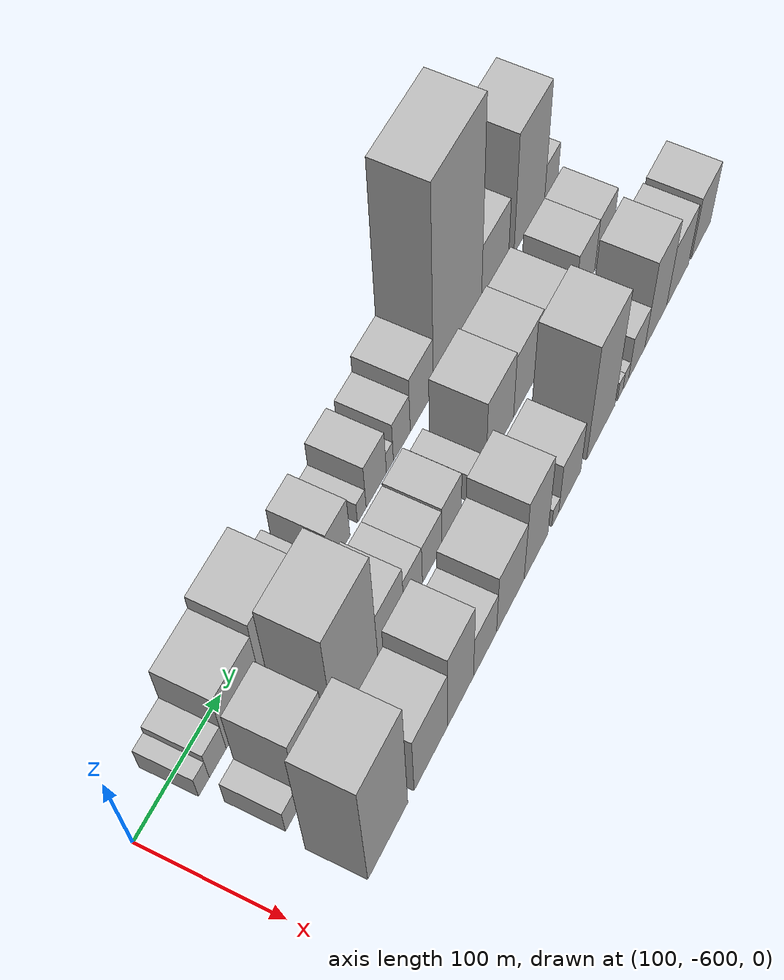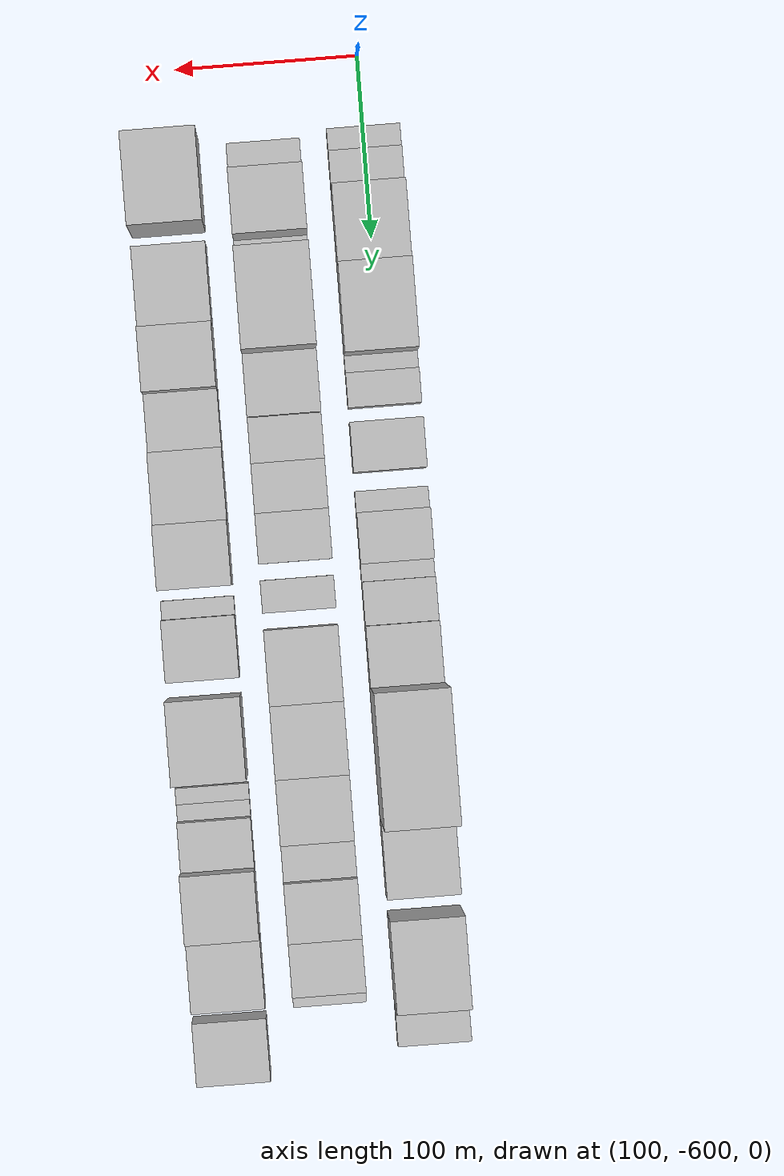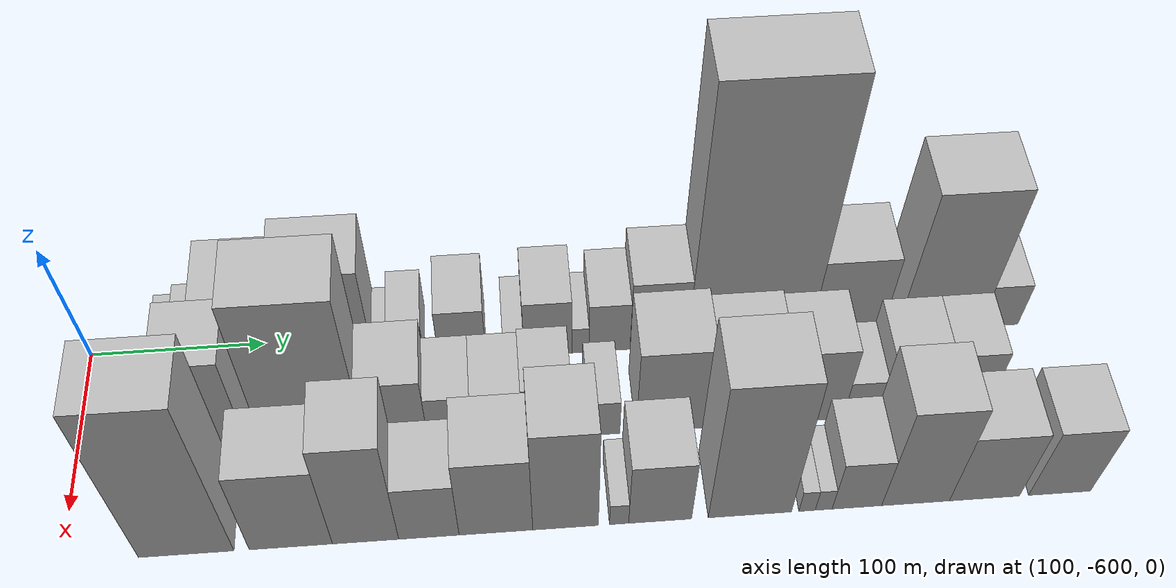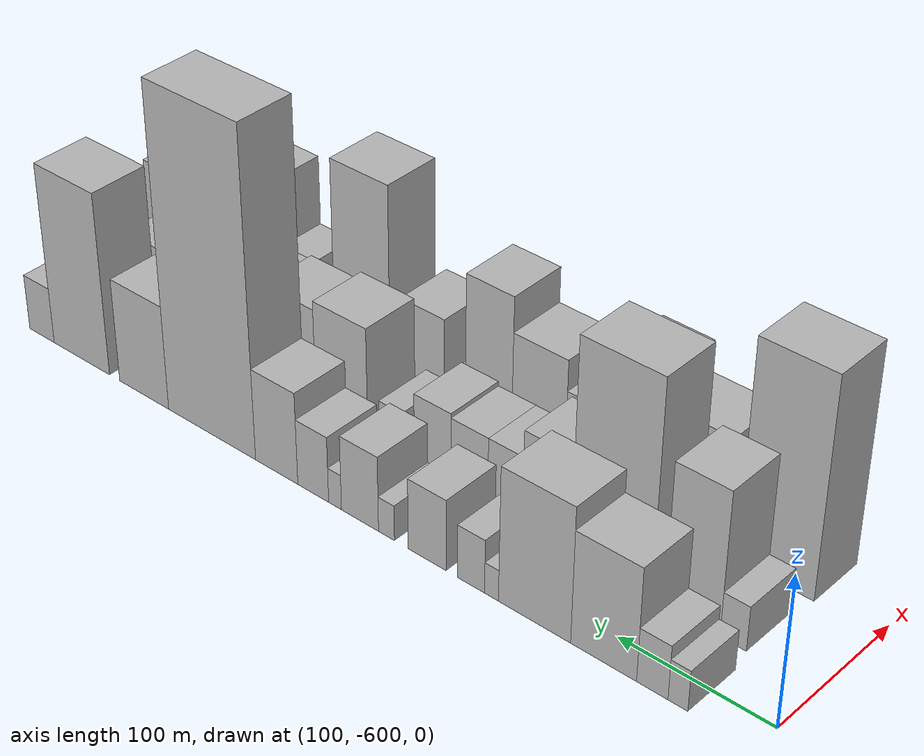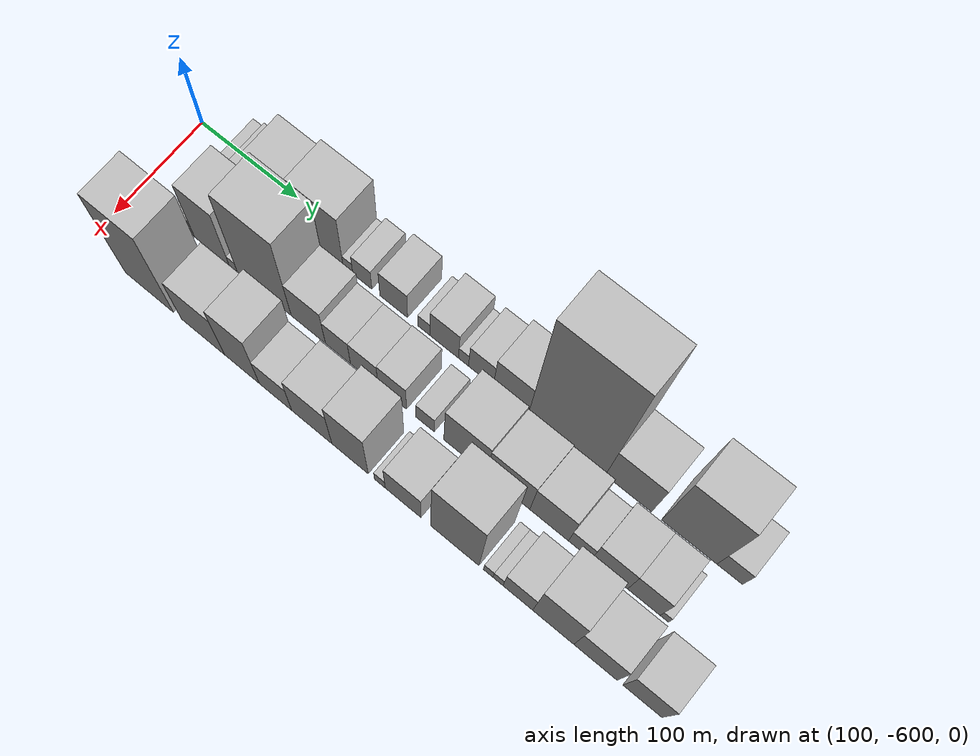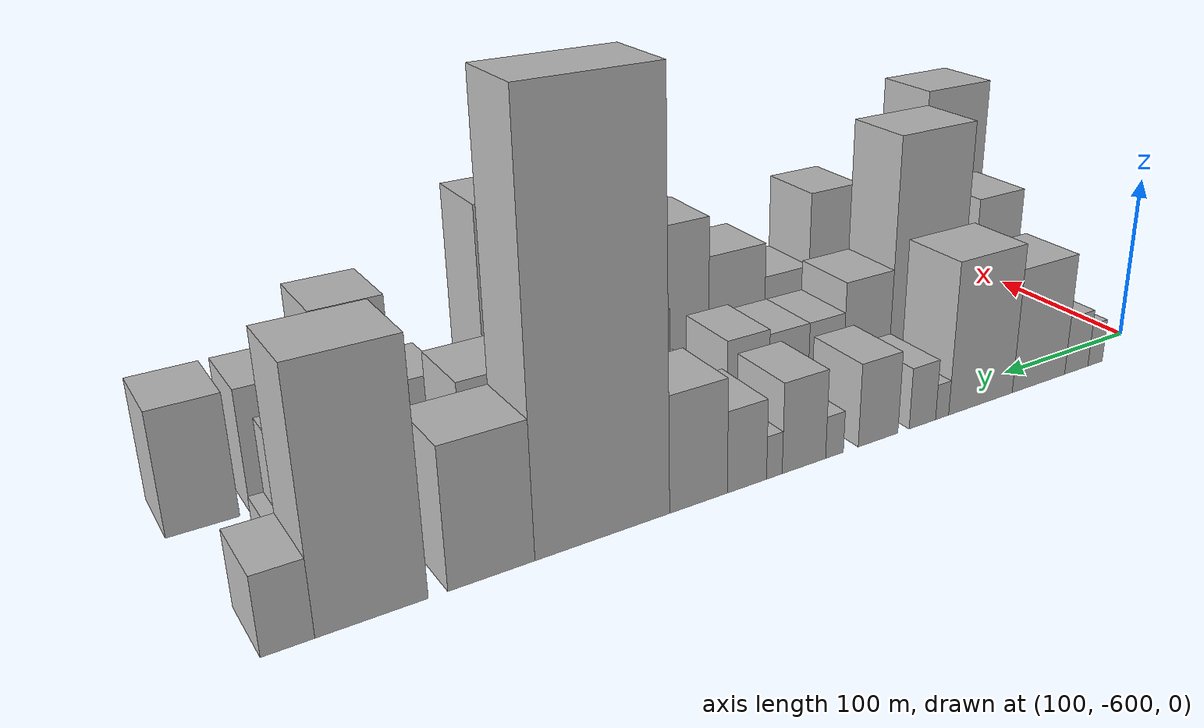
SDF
<sdf version="1.6">
 <world name="default">
  <model name="building_1">
   <static>1</static>
   <pose>100.0000 -553.8017 0 0.000000 0.000000 0.000000</pose>
   <link name="link">
    <pose>0 0 13.50 0 0 0</pose>
    <collision name="collision"><geometry><box><size>40.0000 12.3965 27.0000</size></box></geometry></collision>
    <visual name="visual">
     <cast_shadows>0</cast_shadows>
     <geometry><box><size>40.0000 12.3965 27.0000</size></box></geometry>
     <material>
      <script>
       <uri>model://HANNAS_wall/materials/scripts</uri>
       <uri>model://HANNAS_wall/materials/textures</uri>
       <name>vrc/HANNAS_wall</name>
      </script>
     </material>
    </visual>
   </link>
  </model>
  <model name="building_2">
   <static>1</static>
   <pose>100.0000 -537.7084 0 0.000000 0.000000 0.000000</pose>
   <link name="link">
    <pose>0 0 18.00 0 0 0</pose>
    <collision name="collision"><geometry><box><size>40.0000 19.7902 36.0000</size></box></geometry></collision>
    <visual name="visual">
     <cast_shadows>0</cast_shadows>
     <geometry><box><size>40.0000 19.7902 36.0000</size></box></geometry>
     <material>
      <script>
       <uri>model://HANNAS_wall/materials/scripts</uri>
       <uri>model://HANNAS_wall/materials/textures</uri>
       <name>vrc/HANNAS_wall</name>
      </script>
     </material>
    </visual>
   </link>
  </model>
  <model name="building_3">
   <static>1</static>
   <pose>100.0000 -506.4437 0 0.000000 0.000000 0.000000</pose>
   <link name="link">
    <pose>0 0 37.50 0 0 0</pose>
    <collision name="collision"><geometry><box><size>40.0000 42.7392 75.0000</size></box></geometry></collision>
    <visual name="visual">
     <cast_shadows>0</cast_shadows>
     <geometry><box><size>40.0000 42.7392 75.0000</size></box></geometry>
     <material>
      <script>
       <uri>model://HANNAS_wall/materials/scripts</uri>
       <uri>model://HANNAS_wall/materials/textures</uri>
       <name>vrc/HANNAS_wall</name>
      </script>
     </material>
    </visual>
   </link>
  </model>
  <model name="building_4">
   <static>1</static>
   <pose>100.0000 -460.7238 0 0.000000 0.000000 0.000000</pose>
   <link name="link">
    <pose>0 0 45.00 0 0 0</pose>
    <collision name="collision"><geometry><box><size>40.0000 48.7006 90.0000</size></box></geometry></collision>
    <visual name="visual">
     <cast_shadows>0</cast_shadows>
     <geometry><box><size>40.0000 48.7006 90.0000</size></box></geometry>
     <material>
      <script>
       <uri>model://HANNAS_wall/materials/scripts</uri>
       <uri>model://HANNAS_wall/materials/textures</uri>
       <name>vrc/HANNAS_wall</name>
      </script>
     </material>
    </visual>
   </link>
  </model>
  <model name="building_5">
   <static>1</static>
   <pose>100.0000 -431.5659 0 0.000000 0.000000 0.000000</pose>
   <link name="link">
    <pose>0 0 10.50 0 0 0</pose>
    <collision name="collision"><geometry><box><size>40.0000 9.6152 21.0000</size></box></geometry></collision>
    <visual name="visual">
     <cast_shadows>0</cast_shadows>
     <geometry><box><size>40.0000 9.6152 21.0000</size></box></geometry>
     <material>
      <script>
       <uri>model://HANNAS_wall/materials/scripts</uri>
       <uri>model://HANNAS_wall/materials/textures</uri>
       <name>vrc/HANNAS_wall</name>
      </script>
     </material>
    </visual>
   </link>
  </model>
  <model name="building_6">
   <static>1</static>
   <pose>100.0000 -417.2465 0 0.000000 0.000000 0.000000</pose>
   <link name="link">
    <pose>0 0 18.00 0 0 0</pose>
    <collision name="collision"><geometry><box><size>40.0000 19.0235 36.0000</size></box></geometry></collision>
    <visual name="visual">
     <cast_shadows>0</cast_shadows>
     <geometry><box><size>40.0000 19.0235 36.0000</size></box></geometry>
     <material>
      <script>
       <uri>model://HANNAS_wall/materials/scripts</uri>
       <uri>model://HANNAS_wall/materials/textures</uri>
       <name>vrc/HANNAS_wall</name>
      </script>
     </material>
    </visual>
   </link>
  </model>
  <model name="building_7">
   <static>1</static>
   <pose>100.0000 -386.0777 0 0.000000 0.000000 0.000000</pose>
   <link name="link">
    <pose>0 0 24.00 0 0 0</pose>
    <collision name="collision"><geometry><box><size>40.0000 27.3142 48.0000</size></box></geometry></collision>
    <visual name="visual">
     <cast_shadows>0</cast_shadows>
     <geometry><box><size>40.0000 27.3142 48.0000</size></box></geometry>
     <material>
      <script>
       <uri>model://HANNAS_wall/materials/scripts</uri>
       <uri>model://HANNAS_wall/materials/textures</uri>
       <name>vrc/HANNAS_wall</name>
      </script>
     </material>
    </visual>
   </link>
  </model>
  <model name="building_8">
   <static>1</static>
   <pose>100.0000 -356.5520 0 0.000000 0.000000 0.000000</pose>
   <link name="link">
    <pose>0 0 12.00 0 0 0</pose>
    <collision name="collision"><geometry><box><size>40.0000 11.7372 24.0000</size></box></geometry></collision>
    <visual name="visual">
     <cast_shadows>0</cast_shadows>
     <geometry><box><size>40.0000 11.7372 24.0000</size></box></geometry>
     <material>
      <script>
       <uri>model://HANNAS_wall/materials/scripts</uri>
       <uri>model://HANNAS_wall/materials/textures</uri>
       <name>vrc/HANNAS_wall</name>
      </script>
     </material>
    </visual>
   </link>
  </model>
  <model name="building_9">
   <static>1</static>
   <pose>100.0000 -336.7779 0 0.000000 0.000000 0.000000</pose>
   <link name="link">
    <pose>0 0 25.50 0 0 0</pose>
    <collision name="collision"><geometry><box><size>40.0000 27.8112 51.0000</size></box></geometry></collision>
    <visual name="visual">
     <cast_shadows>0</cast_shadows>
     <geometry><box><size>40.0000 27.8112 51.0000</size></box></geometry>
     <material>
      <script>
       <uri>model://HANNAS_wall/materials/scripts</uri>
       <uri>model://HANNAS_wall/materials/textures</uri>
       <name>vrc/HANNAS_wall</name>
      </script>
     </material>
    </visual>
   </link>
  </model>
  <model name="building_10">
   <static>1</static>
   <pose>100.0000 -317.9994 0 0.000000 0.000000 0.000000</pose>
   <link name="link">
    <pose>0 0 12.00 0 0 0</pose>
    <collision name="collision"><geometry><box><size>40.0000 9.7457 24.0000</size></box></geometry></collision>
    <visual name="visual">
     <cast_shadows>0</cast_shadows>
     <geometry><box><size>40.0000 9.7457 24.0000</size></box></geometry>
     <material>
      <script>
       <uri>model://HANNAS_wall/materials/scripts</uri>
       <uri>model://HANNAS_wall/materials/textures</uri>
       <name>vrc/HANNAS_wall</name>
      </script>
     </material>
    </visual>
   </link>
  </model>
  <model name="building_11">
   <static>1</static>
   <pose>100.0000 -301.2262 0 0.000000 0.000000 0.000000</pose>
   <link name="link">
    <pose>0 0 22.50 0 0 0</pose>
    <collision name="collision"><geometry><box><size>40.0000 23.8006 45.0000</size></box></geometry></collision>
    <visual name="visual">
     <cast_shadows>0</cast_shadows>
     <geometry><box><size>40.0000 23.8006 45.0000</size></box></geometry>
     <material>
      <script>
       <uri>model://HANNAS_wall/materials/scripts</uri>
       <uri>model://HANNAS_wall/materials/textures</uri>
       <name>vrc/HANNAS_wall</name>
      </script>
     </material>
    </visual>
   </link>
  </model>
  <model name="building_12">
   <static>1</static>
   <pose>100.0000 -272.6169 0 0.000000 0.000000 0.000000</pose>
   <link name="link">
    <pose>0 0 31.50 0 0 0</pose>
    <collision name="collision"><geometry><box><size>40.0000 33.4180 63.0000</size></box></geometry></collision>
    <visual name="visual">
     <cast_shadows>0</cast_shadows>
     <geometry><box><size>40.0000 33.4180 63.0000</size></box></geometry>
     <material>
      <script>
       <uri>model://HANNAS_wall/materials/scripts</uri>
       <uri>model://HANNAS_wall/materials/textures</uri>
       <name>vrc/HANNAS_wall</name>
      </script>
     </material>
    </visual>
   </link>
  </model>
  <model name="building_13">
   <static>1</static>
   <pose>100.0000 -220.0636 0 0.000000 0.000000 0.000000</pose>
   <link name="link">
    <pose>0 0 109.50 0 0 0</pose>
    <collision name="collision"><geometry><box><size>40.0000 71.6887 219.0000</size></box></geometry></collision>
    <visual name="visual">
     <cast_shadows>0</cast_shadows>
     <geometry><box><size>40.0000 71.6887 219.0000</size></box></geometry>
     <material>
      <script>
       <uri>model://HANNAS_wall/materials/scripts</uri>
       <uri>model://HANNAS_wall/materials/textures</uri>
       <name>vrc/HANNAS_wall</name>
      </script>
     </material>
    </visual>
   </link>
  </model>
  <model name="building_14">
   <static>1</static>
   <pose>100.0000 -163.1193 0 0.000000 0.000000 0.000000</pose>
   <link name="link">
    <pose>0 0 36.00 0 0 0</pose>
    <collision name="collision"><geometry><box><size>40.0000 42.1997 72.0000</size></box></geometry></collision>
    <visual name="visual">
     <cast_shadows>0</cast_shadows>
     <geometry><box><size>40.0000 42.1997 72.0000</size></box></geometry>
     <material>
      <script>
       <uri>model://HANNAS_wall/materials/scripts</uri>
       <uri>model://HANNAS_wall/materials/textures</uri>
       <name>vrc/HANNAS_wall</name>
      </script>
     </material>
    </visual>
   </link>
  </model>
  <model name="building_15">
   <static>1</static>
   <pose>100.0000 -108.1530 0 0.000000 0.000000 0.000000</pose>
   <link name="link">
    <pose>0 0 63.00 0 0 0</pose>
    <collision name="collision"><geometry><box><size>40.0000 49.7329 126.0000</size></box></geometry></collision>
    <visual name="visual">
     <cast_shadows>0</cast_shadows>
     <geometry><box><size>40.0000 49.7329 126.0000</size></box></geometry>
     <material>
      <script>
       <uri>model://HANNAS_wall/materials/scripts</uri>
       <uri>model://HANNAS_wall/materials/textures</uri>
       <name>vrc/HANNAS_wall</name>
      </script>
     </material>
    </visual>
   </link>
  </model>
  <model name="building_16">
   <static>1</static>
   <pose>100.0000 -72.0409 0 0.000000 0.000000 0.000000</pose>
   <link name="link">
    <pose>0 0 19.50 0 0 0</pose>
    <collision name="collision"><geometry><box><size>40.0000 22.4915 39.0000</size></box></geometry></collision>
    <visual name="visual">
     <cast_shadows>0</cast_shadows>
     <geometry><box><size>40.0000 22.4915 39.0000</size></box></geometry>
     <material>
      <script>
       <uri>model://HANNAS_wall/materials/scripts</uri>
       <uri>model://HANNAS_wall/materials/textures</uri>
       <name>vrc/HANNAS_wall</name>
      </script>
     </material>
    </visual>
   </link>
  </model>
  <model name="building_35">
   <static>1</static>
   <pose>155.0000 -547.6633 0 0.000000 0.000000 0.000000</pose>
   <link name="link">
    <pose>0 0 15.00 0 0 0</pose>
    <collision name="collision"><geometry><box><size>40.0000 16.6734 30.0000</size></box></geometry></collision>
    <visual name="visual">
     <cast_shadows>0</cast_shadows>
     <geometry><box><size>40.0000 16.6734 30.0000</size></box></geometry>
     <material>
      <script>
       <uri>model://HANNAS_wall/materials/scripts</uri>
       <uri>model://HANNAS_wall/materials/textures</uri>
       <name>vrc/HANNAS_wall</name>
      </script>
     </material>
    </visual>
   </link>
  </model>
  <model name="building_36">
   <static>1</static>
   <pose>155.0000 -521.5033 0 0.000000 0.000000 0.000000</pose>
   <link name="link">
    <pose>0 0 48.00 0 0 0</pose>
    <collision name="collision"><geometry><box><size>40.0000 35.6466 96.0000</size></box></geometry></collision>
    <visual name="visual">
     <cast_shadows>0</cast_shadows>
     <geometry><box><size>40.0000 35.6466 96.0000</size></box></geometry>
     <material>
      <script>
       <uri>model://HANNAS_wall/materials/scripts</uri>
       <uri>model://HANNAS_wall/materials/textures</uri>
       <name>vrc/HANNAS_wall</name>
      </script>
     </material>
    </visual>
   </link>
  </model>
  <model name="building_37">
   <static>1</static>
   <pose>155.0000 -499.4806 0 0.000000 0.000000 0.000000</pose>
   <link name="link">
    <pose>0 0 9.00 0 0 0</pose>
    <collision name="collision"><geometry><box><size>40.0000 8.3988 18.0000</size></box></geometry></collision>
    <visual name="visual">
     <cast_shadows>0</cast_shadows>
     <geometry><box><size>40.0000 8.3988 18.0000</size></box></geometry>
     <material>
      <script>
       <uri>model://HANNAS_wall/materials/scripts</uri>
       <uri>model://HANNAS_wall/materials/textures</uri>
       <name>vrc/HANNAS_wall</name>
      </script>
     </material>
    </visual>
   </link>
  </model>
  <model name="building_38">
   <static>1</static>
   <pose>155.0000 -467.8850 0 0.000000 0.000000 0.000000</pose>
   <link name="link">
    <pose>0 0 72.00 0 0 0</pose>
    <collision name="collision"><geometry><box><size>40.0000 54.7925 144.0000</size></box></geometry></collision>
    <visual name="visual">
     <cast_shadows>0</cast_shadows>
     <geometry><box><size>40.0000 54.7925 144.0000</size></box></geometry>
     <material>
      <script>
       <uri>model://HANNAS_wall/materials/scripts</uri>
       <uri>model://HANNAS_wall/materials/textures</uri>
       <name>vrc/HANNAS_wall</name>
      </script>
     </material>
    </visual>
   </link>
  </model>
  <model name="building_39">
   <static>1</static>
   <pose>155.0000 -423.4270 0 0.000000 0.000000 0.000000</pose>
   <link name="link">
    <pose>0 0 33.00 0 0 0</pose>
    <collision name="collision"><geometry><box><size>40.0000 34.1236 66.0000</size></box></geometry></collision>
    <visual name="visual">
     <cast_shadows>0</cast_shadows>
     <geometry><box><size>40.0000 34.1236 66.0000</size></box></geometry>
     <material>
      <script>
       <uri>model://HANNAS_wall/materials/scripts</uri>
       <uri>model://HANNAS_wall/materials/textures</uri>
       <name>vrc/HANNAS_wall</name>
      </script>
     </material>
    </visual>
   </link>
  </model>
  <model name="building_40">
   <static>1</static>
   <pose>155.0000 -393.9571 0 0.000000 0.000000 0.000000</pose>
   <link name="link">
    <pose>0 0 24.00 0 0 0</pose>
    <collision name="collision"><geometry><box><size>40.0000 24.8163 48.0000</size></box></geometry></collision>
    <visual name="visual">
     <cast_shadows>0</cast_shadows>
     <geometry><box><size>40.0000 24.8163 48.0000</size></box></geometry>
     <material>
      <script>
       <uri>model://HANNAS_wall/materials/scripts</uri>
       <uri>model://HANNAS_wall/materials/textures</uri>
       <name>vrc/HANNAS_wall</name>
      </script>
     </material>
    </visual>
   </link>
  </model>
  <model name="building_41">
   <static>1</static>
   <pose>155.0000 -368.0274 0 0.000000 0.000000 0.000000</pose>
   <link name="link">
    <pose>0 0 24.00 0 0 0</pose>
    <collision name="collision"><geometry><box><size>40.0000 27.0430 48.0000</size></box></geometry></collision>
    <visual name="visual">
     <cast_shadows>0</cast_shadows>
     <geometry><box><size>40.0000 27.0430 48.0000</size></box></geometry>
     <material>
      <script>
       <uri>model://HANNAS_wall/materials/scripts</uri>
       <uri>model://HANNAS_wall/materials/textures</uri>
       <name>vrc/HANNAS_wall</name>
      </script>
     </material>
    </visual>
   </link>
  </model>
  <model name="building_42">
   <static>1</static>
   <pose>155.0000 -340.8115 0 0.000000 0.000000 0.000000</pose>
   <link name="link">
    <pose>0 0 25.50 0 0 0</pose>
    <collision name="collision"><geometry><box><size>40.0000 27.3888 51.0000</size></box></geometry></collision>
    <visual name="visual">
     <cast_shadows>0</cast_shadows>
     <geometry><box><size>40.0000 27.3888 51.0000</size></box></geometry>
     <material>
      <script>
       <uri>model://HANNAS_wall/materials/scripts</uri>
       <uri>model://HANNAS_wall/materials/textures</uri>
       <name>vrc/HANNAS_wall</name>
      </script>
     </material>
    </visual>
   </link>
  </model>
  <model name="building_43">
   <static>1</static>
   <pose>155.0000 -309.2607 0 0.000000 0.000000 0.000000</pose>
   <link name="link">
    <pose>0 0 16.50 0 0 0</pose>
    <collision name="collision"><geometry><box><size>40.0000 17.7128 33.0000</size></box></geometry></collision>
    <visual name="visual">
     <cast_shadows>0</cast_shadows>
     <geometry><box><size>40.0000 17.7128 33.0000</size></box></geometry>
     <material>
      <script>
       <uri>model://HANNAS_wall/materials/scripts</uri>
       <uri>model://HANNAS_wall/materials/textures</uri>
       <name>vrc/HANNAS_wall</name>
      </script>
     </material>
    </visual>
   </link>
  </model>
  <model name="building_44">
   <static>1</static>
   <pose>155.0000 -270.9186 0 0.000000 0.000000 0.000000</pose>
   <link name="link">
    <pose>0 0 39.00 0 0 0</pose>
    <collision name="collision"><geometry><box><size>40.0000 40.9714 78.0000</size></box></geometry></collision>
    <visual name="visual">
     <cast_shadows>0</cast_shadows>
     <geometry><box><size>40.0000 40.9714 78.0000</size></box></geometry>
     <material>
      <script>
       <uri>model://HANNAS_wall/materials/scripts</uri>
       <uri>model://HANNAS_wall/materials/textures</uri>
       <name>vrc/HANNAS_wall</name>
      </script>
     </material>
    </visual>
   </link>
  </model>
  <model name="building_45">
   <static>1</static>
   <pose>155.0000 -230.5319 0 0.000000 0.000000 0.000000</pose>
   <link name="link">
    <pose>0 0 36.00 0 0 0</pose>
    <collision name="collision"><geometry><box><size>40.0000 39.8021 72.0000</size></box></geometry></collision>
    <visual name="visual">
     <cast_shadows>0</cast_shadows>
     <geometry><box><size>40.0000 39.8021 72.0000</size></box></geometry>
     <material>
      <script>
       <uri>model://HANNAS_wall/materials/scripts</uri>
       <uri>model://HANNAS_wall/materials/textures</uri>
       <name>vrc/HANNAS_wall</name>
      </script>
     </material>
    </visual>
   </link>
  </model>
  <model name="building_46">
   <static>1</static>
   <pose>155.0000 -192.8076 0 0.000000 0.000000 0.000000</pose>
   <link name="link">
    <pose>0 0 34.50 0 0 0</pose>
    <collision name="collision"><geometry><box><size>40.0000 35.6466 69.0000</size></box></geometry></collision>
    <visual name="visual">
     <cast_shadows>0</cast_shadows>
     <geometry><box><size>40.0000 35.6466 69.0000</size></box></geometry>
     <material>
      <script>
       <uri>model://HANNAS_wall/materials/scripts</uri>
       <uri>model://HANNAS_wall/materials/textures</uri>
       <name>vrc/HANNAS_wall</name>
      </script>
     </material>
    </visual>
   </link>
  </model>
  <model name="building_47">
   <static>1</static>
   <pose>155.0000 -164.5812 0 0.000000 0.000000 0.000000</pose>
   <link name="link">
    <pose>0 0 18.00 0 0 0</pose>
    <collision name="collision"><geometry><box><size>40.0000 20.8061 36.0000</size></box></geometry></collision>
    <visual name="visual">
     <cast_shadows>0</cast_shadows>
     <geometry><box><size>40.0000 20.8061 36.0000</size></box></geometry>
     <material>
      <script>
       <uri>model://HANNAS_wall/materials/scripts</uri>
       <uri>model://HANNAS_wall/materials/textures</uri>
       <name>vrc/HANNAS_wall</name>
      </script>
     </material>
    </visual>
   </link>
  </model>
  <model name="building_48">
   <static>1</static>
   <pose>155.0000 -137.8546 0 0.000000 0.000000 0.000000</pose>
   <link name="link">
    <pose>0 0 28.50 0 0 0</pose>
    <collision name="collision"><geometry><box><size>40.0000 32.6471 57.0000</size></box></geometry></collision>
    <visual name="visual">
     <cast_shadows>0</cast_shadows>
     <geometry><box><size>40.0000 32.6471 57.0000</size></box></geometry>
     <material>
      <script>
       <uri>model://HANNAS_wall/materials/scripts</uri>
       <uri>model://HANNAS_wall/materials/textures</uri>
       <name>vrc/HANNAS_wall</name>
      </script>
     </material>
    </visual>
   </link>
  </model>
  <model name="building_49">
   <static>1</static>
   <pose>155.0000 -107.0407 0 0.000000 0.000000 0.000000</pose>
   <link name="link">
    <pose>0 0 28.50 0 0 0</pose>
    <collision name="collision"><geometry><box><size>40.0000 28.9807 57.0000</size></box></geometry></collision>
    <visual name="visual">
     <cast_shadows>0</cast_shadows>
     <geometry><box><size>40.0000 28.9807 57.0000</size></box></geometry>
     <material>
      <script>
       <uri>model://HANNAS_wall/materials/scripts</uri>
       <uri>model://HANNAS_wall/materials/textures</uri>
       <name>vrc/HANNAS_wall</name>
      </script>
     </material>
    </visual>
   </link>
  </model>
  <model name="building_50">
   <static>1</static>
   <pose>155.0000 -88.8519 0 0.000000 0.000000 0.000000</pose>
   <link name="link">
    <pose>0 0 9.00 0 0 0</pose>
    <collision name="collision"><geometry><box><size>40.0000 7.3968 18.0000</size></box></geometry></collision>
    <visual name="visual">
     <cast_shadows>0</cast_shadows>
     <geometry><box><size>40.0000 7.3968 18.0000</size></box></geometry>
     <material>
      <script>
       <uri>model://HANNAS_wall/materials/scripts</uri>
       <uri>model://HANNAS_wall/materials/textures</uri>
       <name>vrc/HANNAS_wall</name>
      </script>
     </material>
    </visual>
   </link>
  </model>
  <model name="building_66">
   <static>1</static>
   <pose>210.0000 -535.0488 0 0.000000 0.000000 0.000000</pose>
   <link name="link">
    <pose>0 0 73.50 0 0 0</pose>
    <collision name="collision"><geometry><box><size>40.0000 49.9023 147.0000</size></box></geometry></collision>
    <visual name="visual">
     <cast_shadows>0</cast_shadows>
     <geometry><box><size>40.0000 49.9023 147.0000</size></box></geometry>
     <material>
      <script>
       <uri>model://HANNAS_wall/materials/scripts</uri>
       <uri>model://HANNAS_wall/materials/textures</uri>
       <name>vrc/HANNAS_wall</name>
      </script>
     </material>
    </visual>
   </link>
  </model>
  <model name="building_67">
   <static>1</static>
   <pose>210.0000 -480.2343 0 0.000000 0.000000 0.000000</pose>
   <link name="link">
    <pose>0 0 39.00 0 0 0</pose>
    <collision name="collision"><geometry><box><size>40.0000 43.7267 78.0000</size></box></geometry></collision>
    <visual name="visual">
     <cast_shadows>0</cast_shadows>
     <geometry><box><size>40.0000 43.7267 78.0000</size></box></geometry>
     <material>
      <script>
       <uri>model://HANNAS_wall/materials/scripts</uri>
       <uri>model://HANNAS_wall/materials/textures</uri>
       <name>vrc/HANNAS_wall</name>
      </script>
     </material>
    </visual>
   </link>
  </model>
  <model name="building_68">
   <static>1</static>
   <pose>210.0000 -440.8726 0 0.000000 0.000000 0.000000</pose>
   <link name="link">
    <pose>0 0 49.50 0 0 0</pose>
    <collision name="collision"><geometry><box><size>40.0000 34.9967 99.0000</size></box></geometry></collision>
    <visual name="visual">
     <cast_shadows>0</cast_shadows>
     <geometry><box><size>40.0000 34.9967 99.0000</size></box></geometry>
     <material>
      <script>
       <uri>model://HANNAS_wall/materials/scripts</uri>
       <uri>model://HANNAS_wall/materials/textures</uri>
       <name>vrc/HANNAS_wall</name>
      </script>
     </material>
    </visual>
   </link>
  </model>
  <model name="building_69">
   <static>1</static>
   <pose>210.0000 -407.3781 0 0.000000 0.000000 0.000000</pose>
   <link name="link">
    <pose>0 0 27.00 0 0 0</pose>
    <collision name="collision"><geometry><box><size>40.0000 31.9923 54.0000</size></box></geometry></collision>
    <visual name="visual">
     <cast_shadows>0</cast_shadows>
     <geometry><box><size>40.0000 31.9923 54.0000</size></box></geometry>
     <material>
      <script>
       <uri>model://HANNAS_wall/materials/scripts</uri>
       <uri>model://HANNAS_wall/materials/textures</uri>
       <name>vrc/HANNAS_wall</name>
      </script>
     </material>
    </visual>
   </link>
  </model>
  <model name="building_70">
   <static>1</static>
   <pose>210.0000 -371.7638 0 0.000000 0.000000 0.000000</pose>
   <link name="link">
    <pose>0 0 37.50 0 0 0</pose>
    <collision name="collision"><geometry><box><size>40.0000 39.2364 75.0000</size></box></geometry></collision>
    <visual name="visual">
     <cast_shadows>0</cast_shadows>
     <geometry><box><size>40.0000 39.2364 75.0000</size></box></geometry>
     <material>
      <script>
       <uri>model://HANNAS_wall/materials/scripts</uri>
       <uri>model://HANNAS_wall/materials/textures</uri>
       <name>vrc/HANNAS_wall</name>
      </script>
     </material>
    </visual>
   </link>
  </model>
  <model name="building_71">
   <static>1</static>
   <pose>210.0000 -334.6390 0 0.000000 0.000000 0.000000</pose>
   <link name="link">
    <pose>0 0 49.50 0 0 0</pose>
    <collision name="collision"><geometry><box><size>40.0000 35.0132 99.0000</size></box></geometry></collision>
    <visual name="visual">
     <cast_shadows>0</cast_shadows>
     <geometry><box><size>40.0000 35.0132 99.0000</size></box></geometry>
     <material>
      <script>
       <uri>model://HANNAS_wall/materials/scripts</uri>
       <uri>model://HANNAS_wall/materials/textures</uri>
       <name>vrc/HANNAS_wall</name>
      </script>
     </material>
    </visual>
   </link>
  </model>
  <model name="building_72">
   <static>1</static>
   <pose>210.0000 -306.0099 0 0.000000 0.000000 0.000000</pose>
   <link name="link">
    <pose>0 0 10.50 0 0 0</pose>
    <collision name="collision"><geometry><box><size>40.0000 10.2451 21.0000</size></box></geometry></collision>
    <visual name="visual">
     <cast_shadows>0</cast_shadows>
     <geometry><box><size>40.0000 10.2451 21.0000</size></box></geometry>
     <material>
      <script>
       <uri>model://HANNAS_wall/materials/scripts</uri>
       <uri>model://HANNAS_wall/materials/textures</uri>
       <name>vrc/HANNAS_wall</name>
      </script>
     </material>
    </visual>
   </link>
  </model>
  <model name="building_73">
   <static>1</static>
   <pose>210.0000 -283.9760 0 0.000000 0.000000 0.000000</pose>
   <link name="link">
    <pose>0 0 30.00 0 0 0</pose>
    <collision name="collision"><geometry><box><size>40.0000 33.8228 60.0000</size></box></geometry></collision>
    <visual name="visual">
     <cast_shadows>0</cast_shadows>
     <geometry><box><size>40.0000 33.8228 60.0000</size></box></geometry>
     <material>
      <script>
       <uri>model://HANNAS_wall/materials/scripts</uri>
       <uri>model://HANNAS_wall/materials/textures</uri>
       <name>vrc/HANNAS_wall</name>
      </script>
     </material>
    </visual>
   </link>
  </model>
  <model name="building_74">
   <static>1</static>
   <pose>210.0000 -235.5494 0 0.000000 0.000000 0.000000</pose>
   <link name="link">
    <pose>0 0 66.00 0 0 0</pose>
    <collision name="collision"><geometry><box><size>40.0000 45.0304 132.0000</size></box></geometry></collision>
    <visual name="visual">
     <cast_shadows>0</cast_shadows>
     <geometry><box><size>40.0000 45.0304 132.0000</size></box></geometry>
     <material>
      <script>
       <uri>model://HANNAS_wall/materials/scripts</uri>
       <uri>model://HANNAS_wall/materials/textures</uri>
       <name>vrc/HANNAS_wall</name>
      </script>
     </material>
    </visual>
   </link>
  </model>
  <model name="building_75">
   <static>1</static>
   <pose>210.0000 -204.5730 0 0.000000 0.000000 0.000000</pose>
   <link name="link">
    <pose>0 0 10.50 0 0 0</pose>
    <collision name="collision"><geometry><box><size>40.0000 8.9223 21.0000</size></box></geometry></collision>
    <visual name="visual">
     <cast_shadows>0</cast_shadows>
     <geometry><box><size>40.0000 8.9223 21.0000</size></box></geometry>
     <material>
      <script>
       <uri>model://HANNAS_wall/materials/scripts</uri>
       <uri>model://HANNAS_wall/materials/textures</uri>
       <name>vrc/HANNAS_wall</name>
      </script>
     </material>
    </visual>
   </link>
  </model>
  <model name="building_76">
   <static>1</static>
   <pose>210.0000 -195.5478 0 0.000000 0.000000 0.000000</pose>
   <link name="link">
    <pose>0 0 10.50 0 0 0</pose>
    <collision name="collision"><geometry><box><size>40.0000 9.1280 21.0000</size></box></geometry></collision>
    <visual name="visual">
     <cast_shadows>0</cast_shadows>
     <geometry><box><size>40.0000 9.1280 21.0000</size></box></geometry>
     <material>
      <script>
       <uri>model://HANNAS_wall/materials/scripts</uri>
       <uri>model://HANNAS_wall/materials/textures</uri>
       <name>vrc/HANNAS_wall</name>
      </script>
     </material>
    </visual>
   </link>
  </model>
  <model name="building_77">
   <static>1</static>
   <pose>210.0000 -177.4809 0 0.000000 0.000000 0.000000</pose>
   <link name="link">
    <pose>0 0 24.00 0 0 0</pose>
    <collision name="collision"><geometry><box><size>40.0000 27.0060 48.0000</size></box></geometry></collision>
    <visual name="visual">
     <cast_shadows>0</cast_shadows>
     <geometry><box><size>40.0000 27.0060 48.0000</size></box></geometry>
     <material>
      <script>
       <uri>model://HANNAS_wall/materials/scripts</uri>
       <uri>model://HANNAS_wall/materials/textures</uri>
       <name>vrc/HANNAS_wall</name>
      </script>
     </material>
    </visual>
   </link>
  </model>
  <model name="building_78">
   <static>1</static>
   <pose>210.0000 -145.4600 0 0.000000 0.000000 0.000000</pose>
   <link name="link">
    <pose>0 0 48.00 0 0 0</pose>
    <collision name="collision"><geometry><box><size>40.0000 37.0358 96.0000</size></box></geometry></collision>
    <visual name="visual">
     <cast_shadows>0</cast_shadows>
     <geometry><box><size>40.0000 37.0358 96.0000</size></box></geometry>
     <material>
      <script>
       <uri>model://HANNAS_wall/materials/scripts</uri>
       <uri>model://HANNAS_wall/materials/textures</uri>
       <name>vrc/HANNAS_wall</name>
      </script>
     </material>
    </visual>
   </link>
  </model>
  <model name="building_79">
   <static>1</static>
   <pose>210.0000 -107.7139 0 0.000000 0.000000 0.000000</pose>
   <link name="link">
    <pose>0 0 33.00 0 0 0</pose>
    <collision name="collision"><geometry><box><size>40.0000 38.4565 66.0000</size></box></geometry></collision>
    <visual name="visual">
     <cast_shadows>0</cast_shadows>
     <geometry><box><size>40.0000 38.4565 66.0000</size></box></geometry>
     <material>
      <script>
       <uri>model://HANNAS_wall/materials/scripts</uri>
       <uri>model://HANNAS_wall/materials/textures</uri>
       <name>vrc/HANNAS_wall</name>
      </script>
     </material>
    </visual>
   </link>
  </model>
  <model name="building_80">
   <static>1</static>
   <pose>210.0000 -66.4073 0 0.000000 0.000000 0.000000</pose>
   <link name="link">
    <pose>0 0 33.00 0 0 0</pose>
    <collision name="collision"><geometry><box><size>40.0000 34.1566 66.0000</size></box></geometry></collision>
    <visual name="visual">
     <cast_shadows>0</cast_shadows>
     <geometry><box><size>40.0000 34.1566 66.0000</size></box></geometry>
     <material>
      <script>
       <uri>model://HANNAS_wall/materials/scripts</uri>
       <uri>model://HANNAS_wall/materials/textures</uri>
       <name>vrc/HANNAS_wall</name>
      </script>
     </material>
    </visual>
   </link>
  </model>
 </world>
</sdf>
